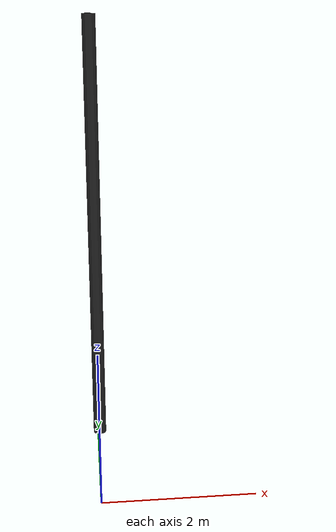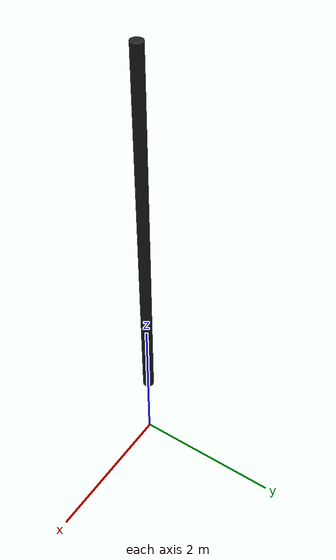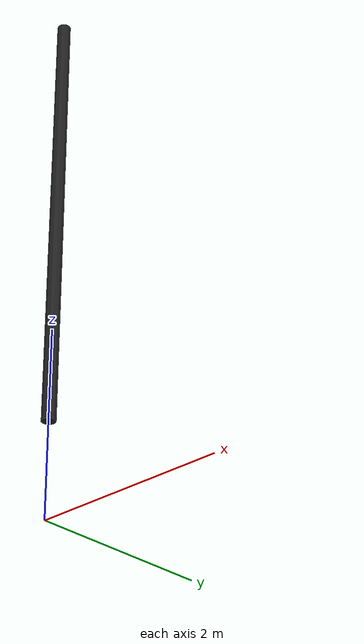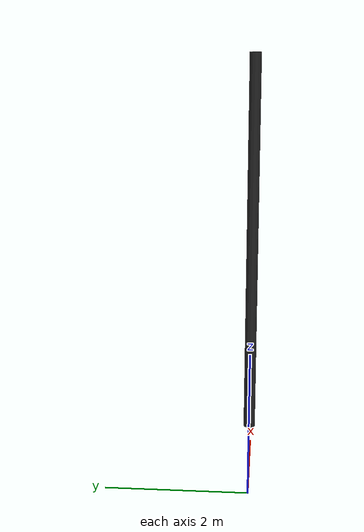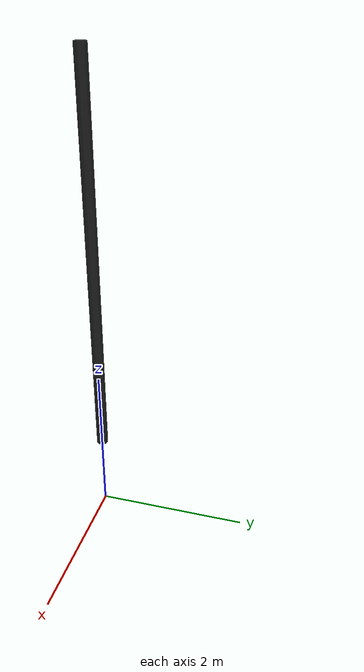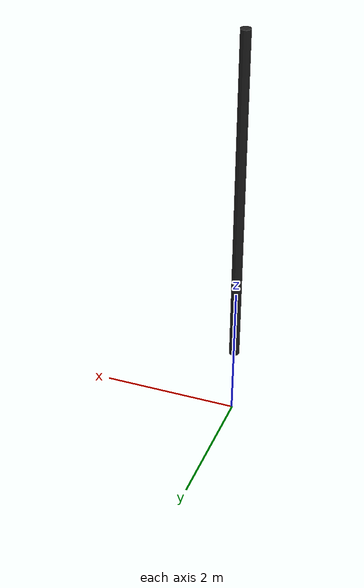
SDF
<?xml version="1.0" ?>
<sdf version="1.6">
  <model name="direk">
    <pose>0 0 1 0 0 0</pose>
    <static>true</static>
    <link name="link">
      <visual name="visual">
        <geometry>
          <mesh>
            <scale>1 1 1</scale>
            <uri>model://direk/meshes/direk.stl</uri>
          </mesh>
        </geometry>
        <material>
          <script>
            <name>Gazebo/Black</name>
          </script>
        </material>
      </visual>
    </link>
  </model>
</sdf>
